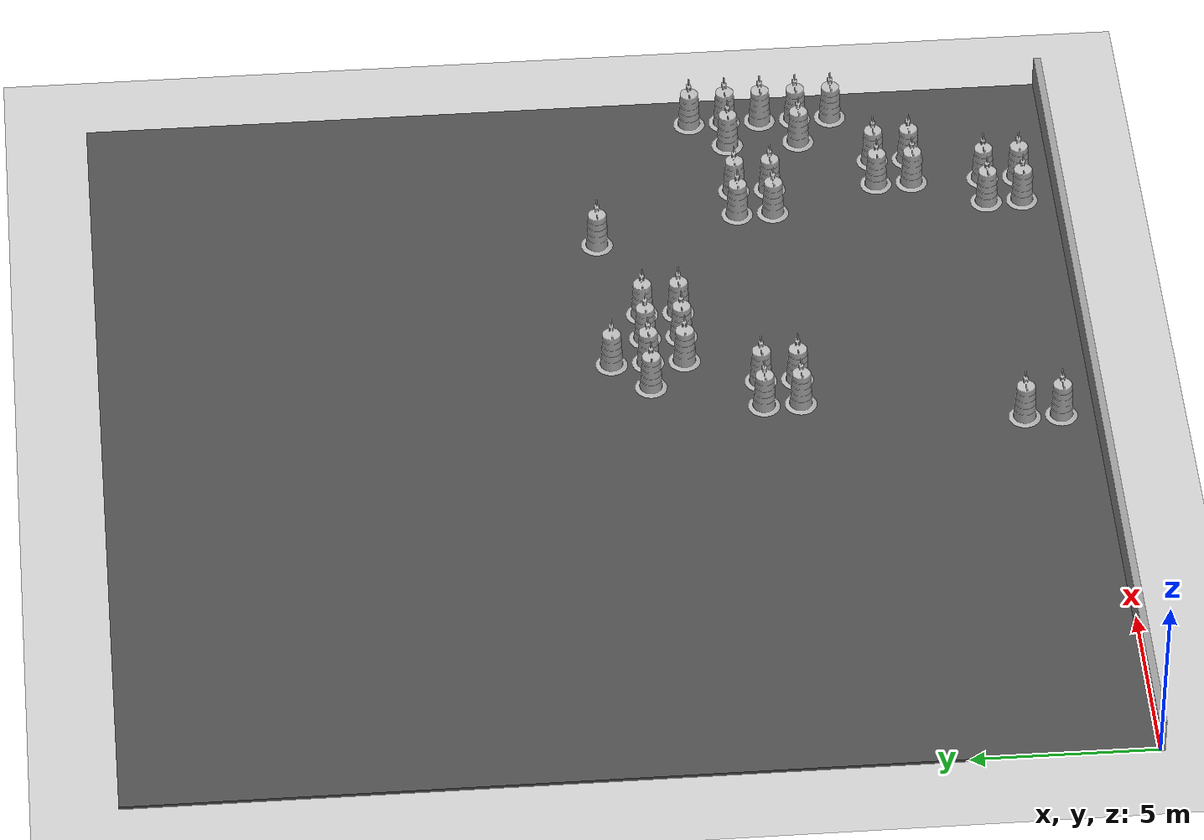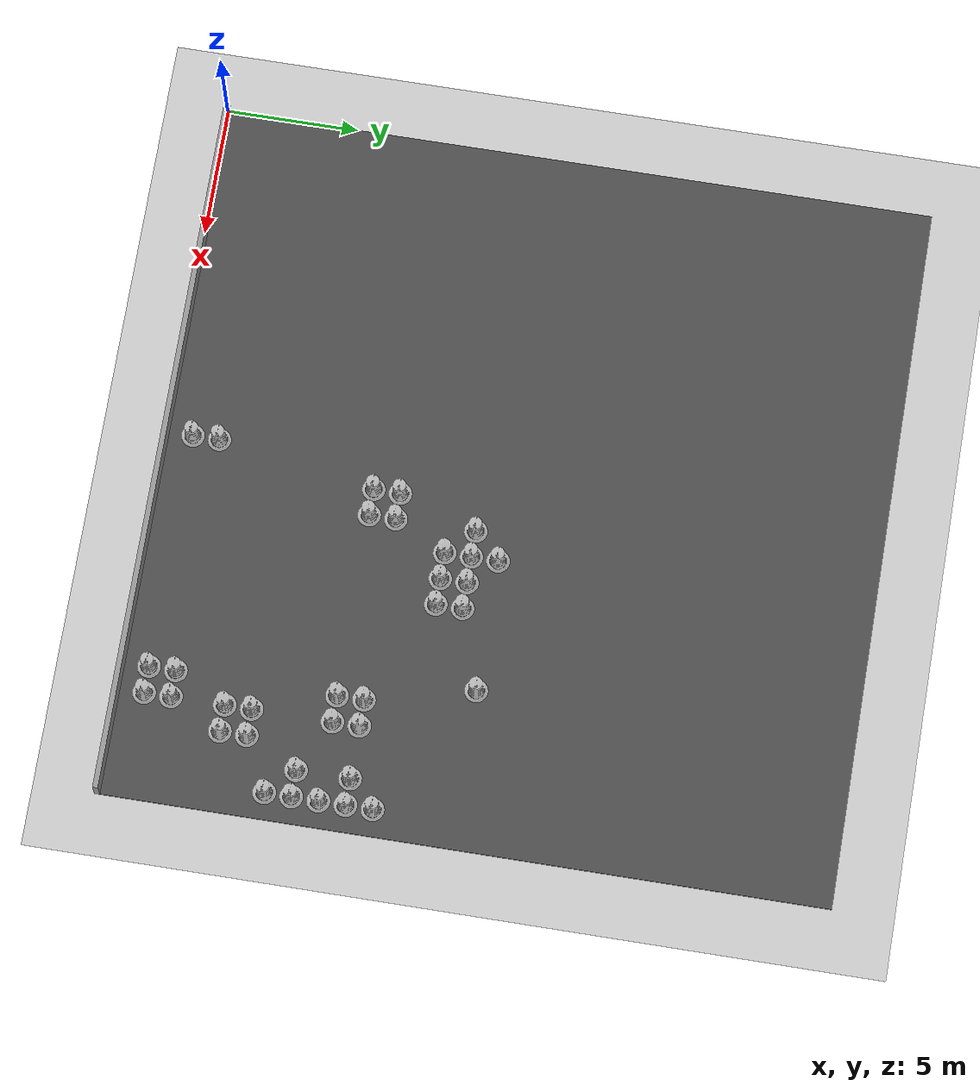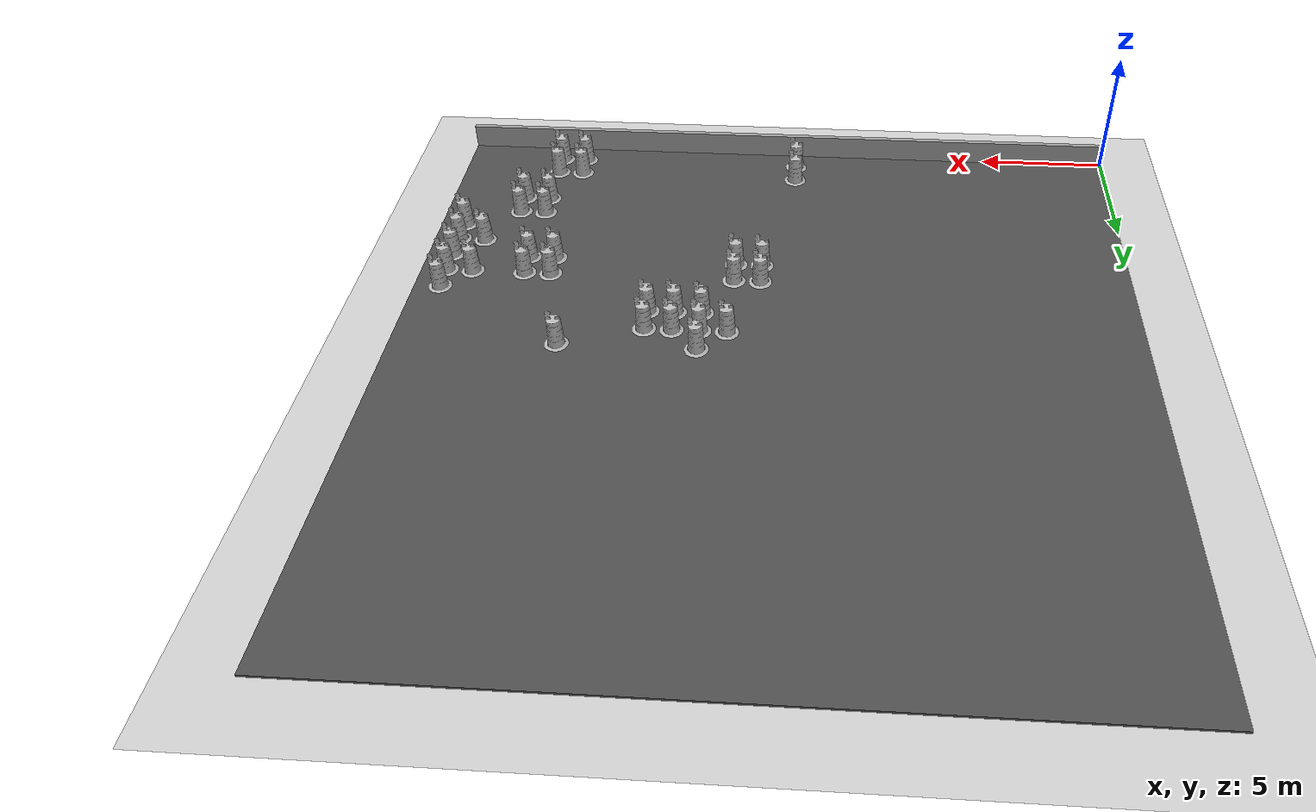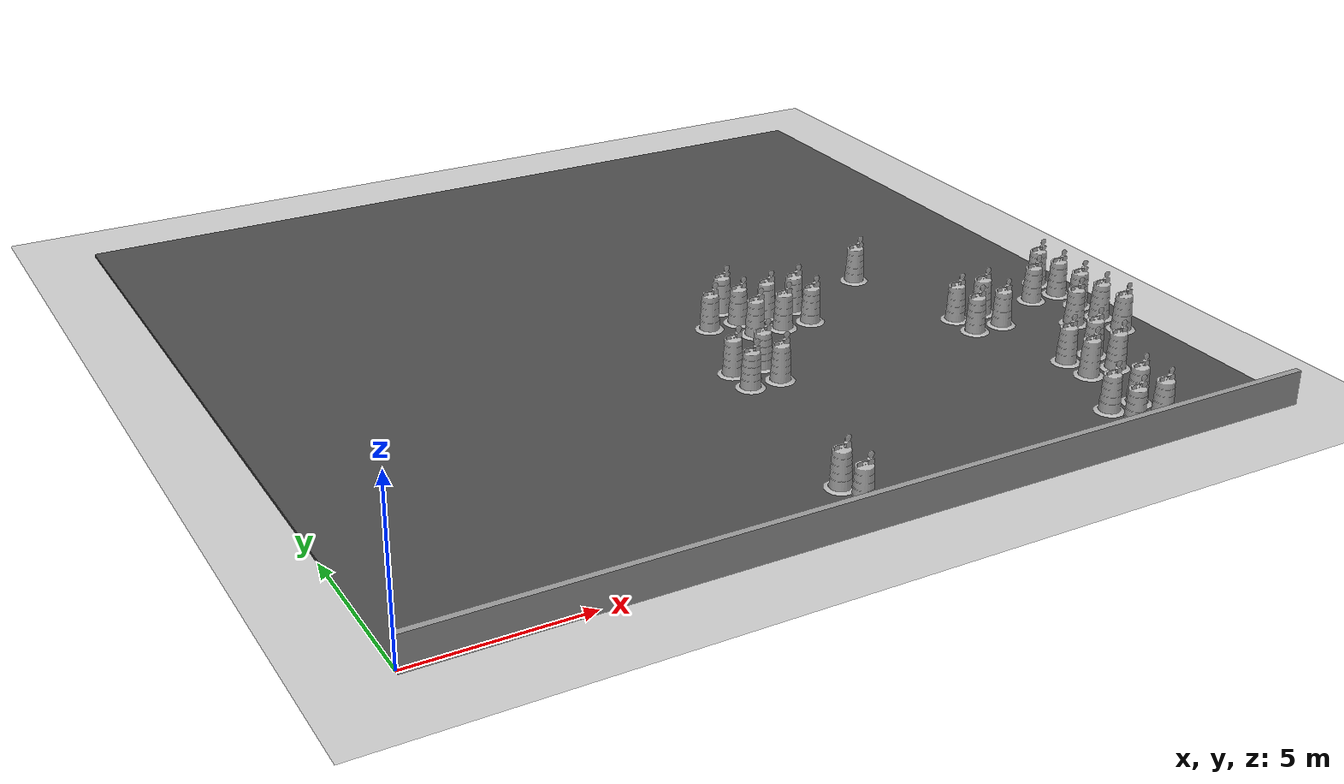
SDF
<sdf version="1.4">
 <world name="default">
  <include><uri>model://ground_plane</uri></include>
  <include><uri>model://sun</uri></include>
  <model name="grey_wall">
   <static>1</static>
   <link name="link">
    <visual name="visual">
     <cast_shadows>0</cast_shadows>
     <geometry><box><size>27 0.2 2</size></box></geometry>
     <material>
      <script>
       <uri>model://grey_wall/materials/scripts</uri>
       <uri>model://grey_wall/materials/textures</uri>
       <name>vrc/grey_wall</name>
      </script>
     </material>
    </visual>
   </link>
   <pose>13.5 0 0 0 0 0</pose>
  </model>
  <model name="asphalt_plane">
   <static>1</static>
   <link name="link">
    <visual name="visual">
     <cast_shadows>0</cast_shadows>
     <geometry><box><size>27 27 0.1</size></box></geometry>
     <material>
      <script>
       <uri>model://asphalt_plane/materials/scripts</uri>
       <uri>model://asphalt_plane/materials/textures</uri>
       <name>vrc/asphalt</name>
      </script>
     </material>
    </visual>
   </link>
   <pose>13.5 13.5 0 0 0 0</pose>
  </model>
  <model name="Construction Barrel">
   <link name="link">
    <collision name="collision">
     <geometry>
      <mesh><uri>model://construction_barrel/meshes/construction_barrel.dae</uri><scale>1 1 1</scale></mesh>
     </geometry>
    </collision>
    <visual name="visual">
     <geometry><mesh><uri>model://construction_barrel/meshes/construction_barrel.dae</uri></mesh></geometry>
    </visual>
   </link>
   <pose>13 1 0 0 0 0</pose>
   <static>1</static>
  </model>
  <model name="Construction Barrel">
   <link name="link">
    <collision name="collision">
     <geometry>
      <mesh><uri>model://construction_barrel/meshes/construction_barrel.dae</uri><scale>1 1 1</scale></mesh>
     </geometry>
    </collision>
    <visual name="visual">
     <geometry><mesh><uri>model://construction_barrel/meshes/construction_barrel.dae</uri></mesh></geometry>
    </visual>
   </link>
   <pose>13 2 0 0 0 0</pose>
   <static>1</static>
  </model>
  <model name="Construction Barrel">
   <link name="link">
    <collision name="collision">
     <geometry>
      <mesh><uri>model://construction_barrel/meshes/construction_barrel.dae</uri><scale>1 1 1</scale></mesh>
     </geometry>
    </collision>
    <visual name="visual">
     <geometry><mesh><uri>model://construction_barrel/meshes/construction_barrel.dae</uri></mesh></geometry>
    </visual>
   </link>
   <pose>14 8 0 0 0 0</pose>
   <static>1</static>
  </model>
  <model name="Construction Barrel">
   <link name="link">
    <collision name="collision">
     <geometry>
      <mesh><uri>model://construction_barrel/meshes/construction_barrel.dae</uri><scale>1 1 1</scale></mesh>
     </geometry>
    </collision>
    <visual name="visual">
     <geometry><mesh><uri>model://construction_barrel/meshes/construction_barrel.dae</uri></mesh></geometry>
    </visual>
   </link>
   <pose>14 9 0 0 0 0</pose>
   <static>1</static>
  </model>
  <model name="Construction Barrel">
   <link name="link">
    <collision name="collision">
     <geometry>
      <mesh><uri>model://construction_barrel/meshes/construction_barrel.dae</uri><scale>1 1 1</scale></mesh>
     </geometry>
    </collision>
    <visual name="visual">
     <geometry><mesh><uri>model://construction_barrel/meshes/construction_barrel.dae</uri></mesh></geometry>
    </visual>
   </link>
   <pose>15 8 0 0 0 0</pose>
   <static>1</static>
  </model>
  <model name="Construction Barrel">
   <link name="link">
    <collision name="collision">
     <geometry>
      <mesh><uri>model://construction_barrel/meshes/construction_barrel.dae</uri><scale>1 1 1</scale></mesh>
     </geometry>
    </collision>
    <visual name="visual">
     <geometry><mesh><uri>model://construction_barrel/meshes/construction_barrel.dae</uri></mesh></geometry>
    </visual>
   </link>
   <pose>15 9 0 0 0 0</pose>
   <static>1</static>
  </model>
  <model name="Construction Barrel">
   <link name="link">
    <collision name="collision">
     <geometry>
      <mesh><uri>model://construction_barrel/meshes/construction_barrel.dae</uri><scale>1 1 1</scale></mesh>
     </geometry>
    </collision>
    <visual name="visual">
     <geometry><mesh><uri>model://construction_barrel/meshes/construction_barrel.dae</uri></mesh></geometry>
    </visual>
   </link>
   <pose>15 12 0 0 0 0</pose>
   <static>1</static>
  </model>
  <model name="Construction Barrel">
   <link name="link">
    <collision name="collision">
     <geometry>
      <mesh><uri>model://construction_barrel/meshes/construction_barrel.dae</uri><scale>1 1 1</scale></mesh>
     </geometry>
    </collision>
    <visual name="visual">
     <geometry><mesh><uri>model://construction_barrel/meshes/construction_barrel.dae</uri></mesh></geometry>
    </visual>
   </link>
   <pose>16 11 0 0 0 0</pose>
   <static>1</static>
  </model>
  <model name="Construction Barrel">
   <link name="link">
    <collision name="collision">
     <geometry>
      <mesh><uri>model://construction_barrel/meshes/construction_barrel.dae</uri><scale>1 1 1</scale></mesh>
     </geometry>
    </collision>
    <visual name="visual">
     <geometry><mesh><uri>model://construction_barrel/meshes/construction_barrel.dae</uri></mesh></geometry>
    </visual>
   </link>
   <pose>16 12 0 0 0 0</pose>
   <static>1</static>
  </model>
  <model name="Construction Barrel">
   <link name="link">
    <collision name="collision">
     <geometry>
      <mesh><uri>model://construction_barrel/meshes/construction_barrel.dae</uri><scale>1 1 1</scale></mesh>
     </geometry>
    </collision>
    <visual name="visual">
     <geometry><mesh><uri>model://construction_barrel/meshes/construction_barrel.dae</uri></mesh></geometry>
    </visual>
   </link>
   <pose>16 13 0 0 0 0</pose>
   <static>1</static>
  </model>
  <model name="Construction Barrel">
   <link name="link">
    <collision name="collision">
     <geometry>
      <mesh><uri>model://construction_barrel/meshes/construction_barrel.dae</uri><scale>1 1 1</scale></mesh>
     </geometry>
    </collision>
    <visual name="visual">
     <geometry><mesh><uri>model://construction_barrel/meshes/construction_barrel.dae</uri></mesh></geometry>
    </visual>
   </link>
   <pose>17 11 0 0 0 0</pose>
   <static>1</static>
  </model>
  <model name="Construction Barrel">
   <link name="link">
    <collision name="collision">
     <geometry>
      <mesh><uri>model://construction_barrel/meshes/construction_barrel.dae</uri><scale>1 1 1</scale></mesh>
     </geometry>
    </collision>
    <visual name="visual">
     <geometry><mesh><uri>model://construction_barrel/meshes/construction_barrel.dae</uri></mesh></geometry>
    </visual>
   </link>
   <pose>17 12 0 0 0 0</pose>
   <static>1</static>
  </model>
  <model name="Construction Barrel">
   <link name="link">
    <collision name="collision">
     <geometry>
      <mesh><uri>model://construction_barrel/meshes/construction_barrel.dae</uri><scale>1 1 1</scale></mesh>
     </geometry>
    </collision>
    <visual name="visual">
     <geometry><mesh><uri>model://construction_barrel/meshes/construction_barrel.dae</uri></mesh></geometry>
    </visual>
   </link>
   <pose>18 11 0 0 0 0</pose>
   <static>1</static>
  </model>
  <model name="Construction Barrel">
   <link name="link">
    <collision name="collision">
     <geometry>
      <mesh><uri>model://construction_barrel/meshes/construction_barrel.dae</uri><scale>1 1 1</scale></mesh>
     </geometry>
    </collision>
    <visual name="visual">
     <geometry><mesh><uri>model://construction_barrel/meshes/construction_barrel.dae</uri></mesh></geometry>
    </visual>
   </link>
   <pose>18 12 0 0 0 0</pose>
   <static>1</static>
  </model>
  <model name="Construction Barrel">
   <link name="link">
    <collision name="collision">
     <geometry>
      <mesh><uri>model://construction_barrel/meshes/construction_barrel.dae</uri><scale>1 1 1</scale></mesh>
     </geometry>
    </collision>
    <visual name="visual">
     <geometry><mesh><uri>model://construction_barrel/meshes/construction_barrel.dae</uri></mesh></geometry>
    </visual>
   </link>
   <pose>21 13 0 0 0 0</pose>
   <static>1</static>
  </model>
  <model name="Construction Barrel">
   <link name="link">
    <collision name="collision">
     <geometry>
      <mesh><uri>model://construction_barrel/meshes/construction_barrel.dae</uri><scale>1 1 1</scale></mesh>
     </geometry>
    </collision>
    <visual name="visual">
     <geometry><mesh><uri>model://construction_barrel/meshes/construction_barrel.dae</uri></mesh></geometry>
    </visual>
   </link>
   <pose>22 1 0 0 0 0</pose>
   <static>1</static>
  </model>
  <model name="Construction Barrel">
   <link name="link">
    <collision name="collision">
     <geometry>
      <mesh><uri>model://construction_barrel/meshes/construction_barrel.dae</uri><scale>1 1 1</scale></mesh>
     </geometry>
    </collision>
    <visual name="visual">
     <geometry><mesh><uri>model://construction_barrel/meshes/construction_barrel.dae</uri></mesh></geometry>
    </visual>
   </link>
   <pose>22 2 0 0 0 0</pose>
   <static>1</static>
  </model>
  <model name="Construction Barrel">
   <link name="link">
    <collision name="collision">
     <geometry>
      <mesh><uri>model://construction_barrel/meshes/construction_barrel.dae</uri><scale>1 1 1</scale></mesh>
     </geometry>
    </collision>
    <visual name="visual">
     <geometry><mesh><uri>model://construction_barrel/meshes/construction_barrel.dae</uri></mesh></geometry>
    </visual>
   </link>
   <pose>22 8 0 0 0 0</pose>
   <static>1</static>
  </model>
  <model name="Construction Barrel">
   <link name="link">
    <collision name="collision">
     <geometry>
      <mesh><uri>model://construction_barrel/meshes/construction_barrel.dae</uri><scale>1 1 1</scale></mesh>
     </geometry>
    </collision>
    <visual name="visual">
     <geometry><mesh><uri>model://construction_barrel/meshes/construction_barrel.dae</uri></mesh></geometry>
    </visual>
   </link>
   <pose>22 9 0 0 0 0</pose>
   <static>1</static>
  </model>
  <model name="Construction Barrel">
   <link name="link">
    <collision name="collision">
     <geometry>
      <mesh><uri>model://construction_barrel/meshes/construction_barrel.dae</uri><scale>1 1 1</scale></mesh>
     </geometry>
    </collision>
    <visual name="visual">
     <geometry><mesh><uri>model://construction_barrel/meshes/construction_barrel.dae</uri></mesh></geometry>
    </visual>
   </link>
   <pose>23 1 0 0 0 0</pose>
   <static>1</static>
  </model>
  <model name="Construction Barrel">
   <link name="link">
    <collision name="collision">
     <geometry>
      <mesh><uri>model://construction_barrel/meshes/construction_barrel.dae</uri><scale>1 1 1</scale></mesh>
     </geometry>
    </collision>
    <visual name="visual">
     <geometry><mesh><uri>model://construction_barrel/meshes/construction_barrel.dae</uri></mesh></geometry>
    </visual>
   </link>
   <pose>23 2 0 0 0 0</pose>
   <static>1</static>
  </model>
  <model name="Construction Barrel">
   <link name="link">
    <collision name="collision">
     <geometry>
      <mesh><uri>model://construction_barrel/meshes/construction_barrel.dae</uri><scale>1 1 1</scale></mesh>
     </geometry>
    </collision>
    <visual name="visual">
     <geometry><mesh><uri>model://construction_barrel/meshes/construction_barrel.dae</uri></mesh></geometry>
    </visual>
   </link>
   <pose>23 4 0 0 0 0</pose>
   <static>1</static>
  </model>
  <model name="Construction Barrel">
   <link name="link">
    <collision name="collision">
     <geometry>
      <mesh><uri>model://construction_barrel/meshes/construction_barrel.dae</uri><scale>1 1 1</scale></mesh>
     </geometry>
    </collision>
    <visual name="visual">
     <geometry><mesh><uri>model://construction_barrel/meshes/construction_barrel.dae</uri></mesh></geometry>
    </visual>
   </link>
   <pose>23 5 0 0 0 0</pose>
   <static>1</static>
  </model>
  <model name="Construction Barrel">
   <link name="link">
    <collision name="collision">
     <geometry>
      <mesh><uri>model://construction_barrel/meshes/construction_barrel.dae</uri><scale>1 1 1</scale></mesh>
     </geometry>
    </collision>
    <visual name="visual">
     <geometry><mesh><uri>model://construction_barrel/meshes/construction_barrel.dae</uri></mesh></geometry>
    </visual>
   </link>
   <pose>23 8 0 0 0 0</pose>
   <static>1</static>
  </model>
  <model name="Construction Barrel">
   <link name="link">
    <collision name="collision">
     <geometry>
      <mesh><uri>model://construction_barrel/meshes/construction_barrel.dae</uri><scale>1 1 1</scale></mesh>
     </geometry>
    </collision>
    <visual name="visual">
     <geometry><mesh><uri>model://construction_barrel/meshes/construction_barrel.dae</uri></mesh></geometry>
    </visual>
   </link>
   <pose>23 9 0 0 0 0</pose>
   <static>1</static>
  </model>
  <model name="Construction Barrel">
   <link name="link">
    <collision name="collision">
     <geometry>
      <mesh><uri>model://construction_barrel/meshes/construction_barrel.dae</uri><scale>1 1 1</scale></mesh>
     </geometry>
    </collision>
    <visual name="visual">
     <geometry><mesh><uri>model://construction_barrel/meshes/construction_barrel.dae</uri></mesh></geometry>
    </visual>
   </link>
   <pose>24 4 0 0 0 0</pose>
   <static>1</static>
  </model>
  <model name="Construction Barrel">
   <link name="link">
    <collision name="collision">
     <geometry>
      <mesh><uri>model://construction_barrel/meshes/construction_barrel.dae</uri><scale>1 1 1</scale></mesh>
     </geometry>
    </collision>
    <visual name="visual">
     <geometry><mesh><uri>model://construction_barrel/meshes/construction_barrel.dae</uri></mesh></geometry>
    </visual>
   </link>
   <pose>24 5 0 0 0 0</pose>
   <static>1</static>
  </model>
  <model name="Construction Barrel">
   <link name="link">
    <collision name="collision">
     <geometry>
      <mesh><uri>model://construction_barrel/meshes/construction_barrel.dae</uri><scale>1 1 1</scale></mesh>
     </geometry>
    </collision>
    <visual name="visual">
     <geometry><mesh><uri>model://construction_barrel/meshes/construction_barrel.dae</uri></mesh></geometry>
    </visual>
   </link>
   <pose>25 7 0 0 0 0</pose>
   <static>1</static>
  </model>
  <model name="Construction Barrel">
   <link name="link">
    <collision name="collision">
     <geometry>
      <mesh><uri>model://construction_barrel/meshes/construction_barrel.dae</uri><scale>1 1 1</scale></mesh>
     </geometry>
    </collision>
    <visual name="visual">
     <geometry><mesh><uri>model://construction_barrel/meshes/construction_barrel.dae</uri></mesh></geometry>
    </visual>
   </link>
   <pose>25 9 0 0 0 0</pose>
   <static>1</static>
  </model>
  <model name="Construction Barrel">
   <link name="link">
    <collision name="collision">
     <geometry>
      <mesh><uri>model://construction_barrel/meshes/construction_barrel.dae</uri><scale>1 1 1</scale></mesh>
     </geometry>
    </collision>
    <visual name="visual">
     <geometry><mesh><uri>model://construction_barrel/meshes/construction_barrel.dae</uri></mesh></geometry>
    </visual>
   </link>
   <pose>26 6 0 0 0 0</pose>
   <static>1</static>
  </model>
  <model name="Construction Barrel">
   <link name="link">
    <collision name="collision">
     <geometry>
      <mesh><uri>model://construction_barrel/meshes/construction_barrel.dae</uri><scale>1 1 1</scale></mesh>
     </geometry>
    </collision>
    <visual name="visual">
     <geometry><mesh><uri>model://construction_barrel/meshes/construction_barrel.dae</uri></mesh></geometry>
    </visual>
   </link>
   <pose>26 7 0 0 0 0</pose>
   <static>1</static>
  </model>
  <model name="Construction Barrel">
   <link name="link">
    <collision name="collision">
     <geometry>
      <mesh><uri>model://construction_barrel/meshes/construction_barrel.dae</uri><scale>1 1 1</scale></mesh>
     </geometry>
    </collision>
    <visual name="visual">
     <geometry><mesh><uri>model://construction_barrel/meshes/construction_barrel.dae</uri></mesh></geometry>
    </visual>
   </link>
   <pose>26 8 0 0 0 0</pose>
   <static>1</static>
  </model>
  <model name="Construction Barrel">
   <link name="link">
    <collision name="collision">
     <geometry>
      <mesh><uri>model://construction_barrel/meshes/construction_barrel.dae</uri><scale>1 1 1</scale></mesh>
     </geometry>
    </collision>
    <visual name="visual">
     <geometry><mesh><uri>model://construction_barrel/meshes/construction_barrel.dae</uri></mesh></geometry>
    </visual>
   </link>
   <pose>26 9 0 0 0 0</pose>
   <static>1</static>
  </model>
  <model name="Construction Barrel">
   <link name="link">
    <collision name="collision">
     <geometry>
      <mesh><uri>model://construction_barrel/meshes/construction_barrel.dae</uri><scale>1 1 1</scale></mesh>
     </geometry>
    </collision>
    <visual name="visual">
     <geometry><mesh><uri>model://construction_barrel/meshes/construction_barrel.dae</uri></mesh></geometry>
    </visual>
   </link>
   <pose>26 10 0 0 0 0</pose>
   <static>1</static>
  </model>
 </world>
</sdf>
